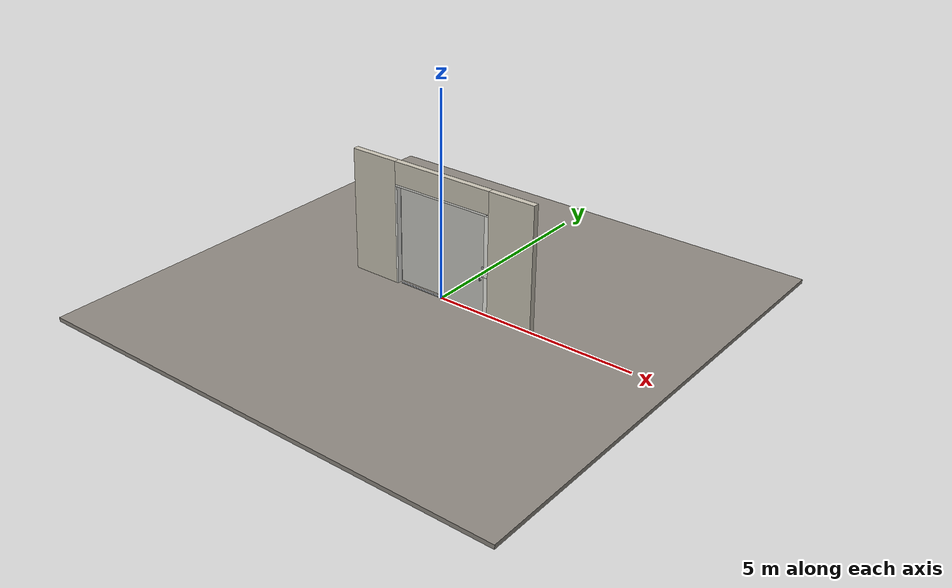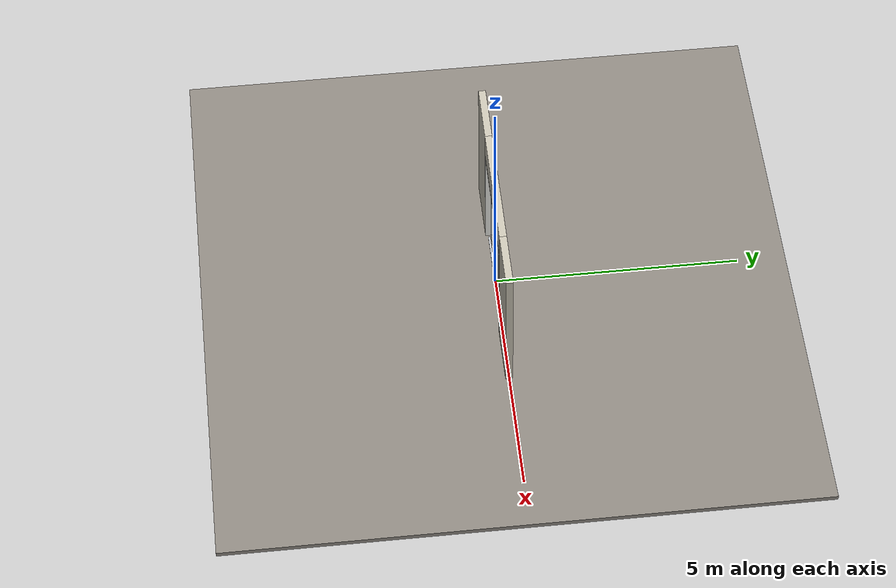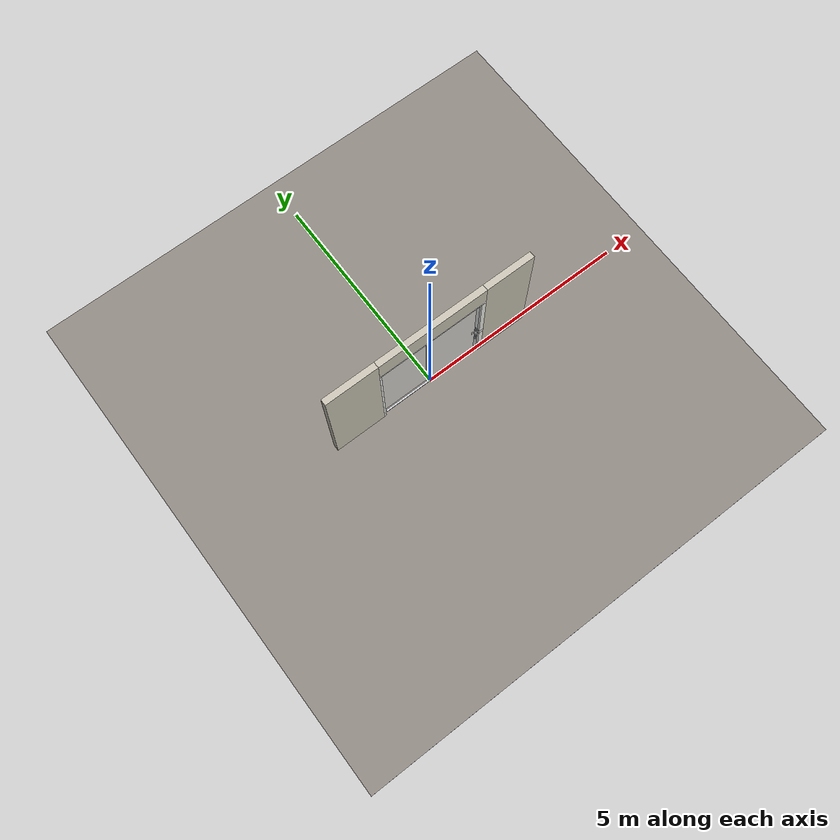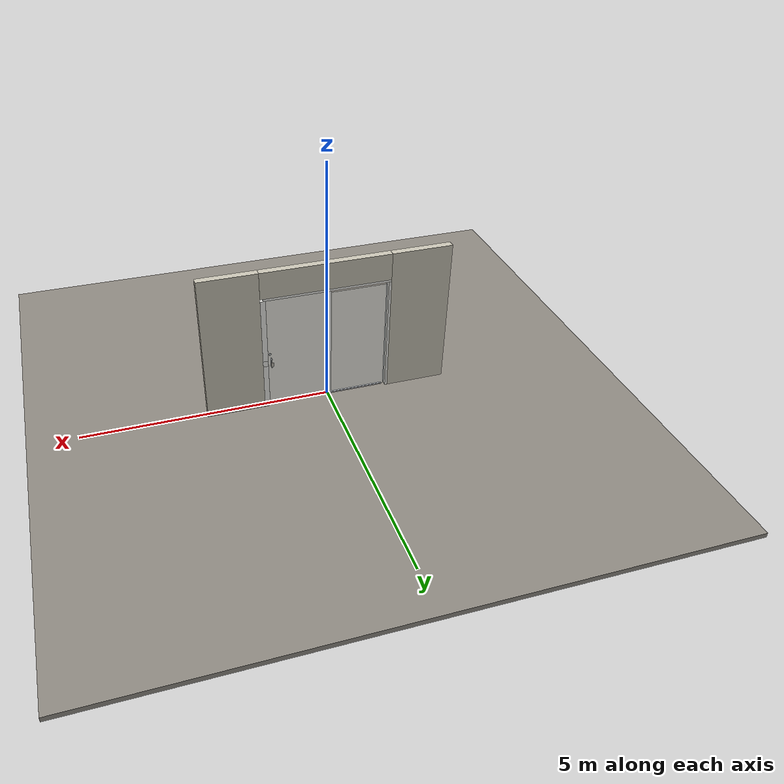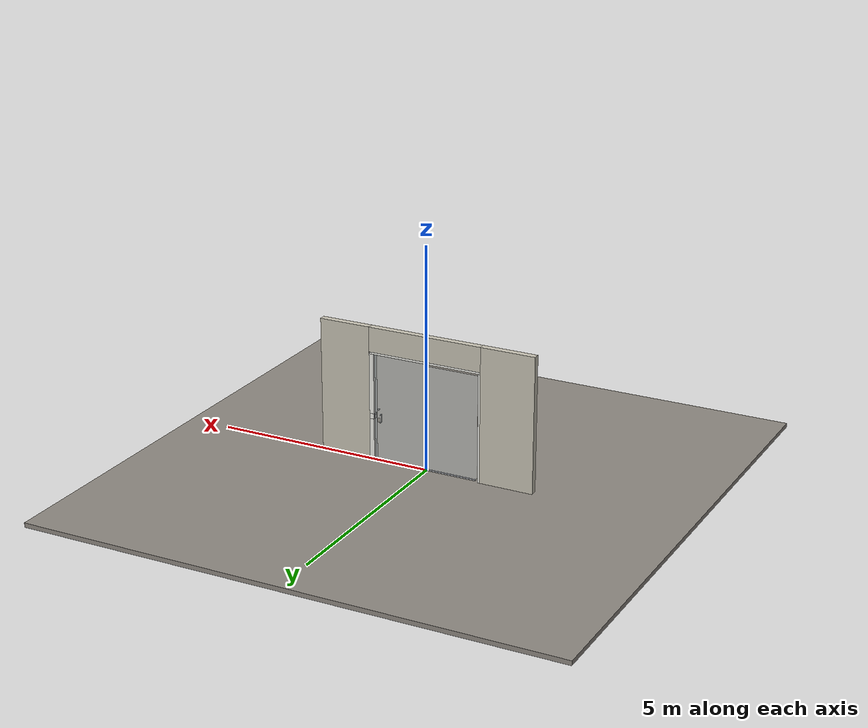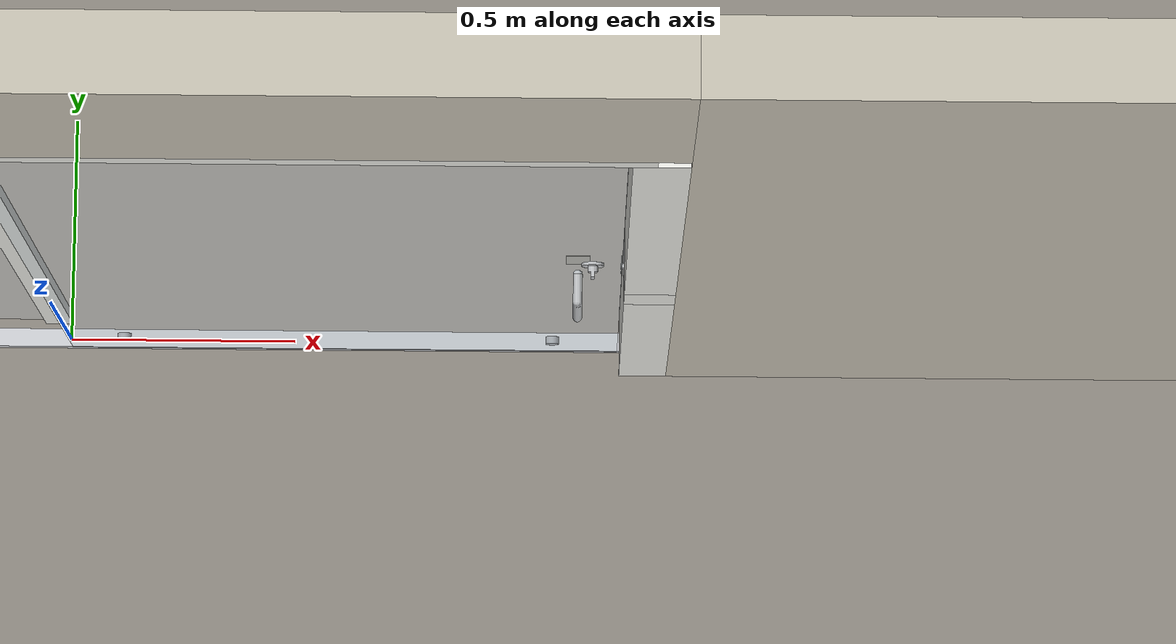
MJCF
<?xml version="1.0" ?>
<mujoco model="db0023_sliding_single_simple">
  <compiler angle="radian" meshdir="../../hardware" texturedir="../../textures" autolimits="true" inertiafromgeom="false"/>
  <option timestep="0.002" integrator="implicitfast" cone="elliptic" impratio="10" noslip_iterations="3">
    <flag multiccd="enable"/>
  </option>
  <size memory="16M"/>
  <default>
    <geom condim="4" solref="0.005 1" solimp="0.95 0.99 0.001"/>
    <joint solreflimit="0.005 1" solimplimit="0.95 0.99 0.001"/>
    <tendon solreflimit="0.005 1"/>
    <equality solref="0.002 1"/>
  </default>
  <visual>
    <headlight ambient="0.4 0.4 0.4" diffuse="0.7 0.7 0.7" specular="0.2 0.2 0.2"/>
    <quality shadowsize="4096"/>
    <map znear="0.01" zfar="60"/>
  </visual>
  <asset>
    <mesh name="pull_1e5d69a91a" file="pull_1e5d69a91a.obj"/>
    <mesh name="thumbturn_eb5c9899a3" file="thumbturn_eb5c9899a3.obj"/>
    <material name="mat_floor" rgba="0.55 0.53 0.5 1" specular="0.2" shininess="0.15" reflectance="0"/>
    <material name="mat_wall" rgba="0.78 0.76 0.7 1" specular="0.2" shininess="0.1" reflectance="0"/>
    <material name="mat_frame" rgba="0.92 0.92 0.9 1" specular="0.2" shininess="0.6" reflectance="0"/>
    <material name="mat_track" rgba="0.8 0.81 0.83 1" specular="0.8" shininess="0.6" reflectance="0.4"/>
    <material name="mat_fixed_glass" rgba="0.85 0.92 0.95 0.25" specular="0.2" shininess="0.95" reflectance="0.1"/>
    <material name="mat_leaf" rgba="0.85 0.92 0.95 0.25" specular="0.2" shininess="0.95" reflectance="0.1"/>
    <material name="mat_glass_leaf" rgba="0.85 0.92 0.95 0.25" specular="0.2" shininess="0.95" reflectance="0.1"/>
    <material name="mat_patch" rgba="0.75 0.76 0.77 1" specular="0.8" shininess="0.65" reflectance="0.4"/>
    <material name="mat_roller" rgba="0.65 0.66 0.68 1" specular="0.74" shininess="0.5" reflectance="0.36"/>
    <material name="mat_op_stainless" rgba="0.75 0.76 0.77 1" specular="0.8" shininess="0.65" reflectance="0.4"/>
    <material name="mat_op_nickel_satin" rgba="0.72 0.7 0.66 1" specular="0.8" shininess="0.65" reflectance="0.4"/>
    <material name="mat_hook" rgba="0.75 0.76 0.77 1" specular="0.8" shininess="0.65" reflectance="0.4"/>
    <texture name="skybox" type="skybox" builtin="gradient" rgb1="0.6 0.7 0.85" rgb2="0.9 0.92 0.95" width="256" height="256"/>
  </asset>
  <worldbody>
    <light name="sun" pos="1.5 -2.5 4" dir="-0.3 0.5 -0.8" directional="true" diffuse="0.8 0.8 0.8" specular="0.3 0.3 0.3" castshadow="true"/>
    <light name="fill" pos="-1.5 2.5 3" dir="0.3 -0.5 -0.7" directional="true" diffuse="0.35 0.35 0.4" castshadow="false"/>
    <camera name="robot_view" pos="0 -2.929375 2.042725" xyaxes="1 0 0 0 0.26963 0.962964" fovy="52"/>
    <camera name="far_view" pos="0 2.929375 2.042725" xyaxes="-1 0 0 0 -0.26963 0.962964" fovy="52"/>
    <camera name="iso" pos="2.226325 -2.460675 2.511425" xyaxes="0.741536 0.670913 0 -0.242917 0.268487 0.932151" fovy="46"/>
    <camera name="detail_handle" pos="1.314 -0.8825 1.23" xyaxes="0.97561 0.219512 0 -0.070934 0.315262 0.94635" fovy="38"/>
    <geom name="floor" type="box" size="6 6 0.05" pos="0 0 -0.05" material="mat_floor" group="0" contype="1" conaffinity="1" friction="0.8 0.005 0.0001" density="2400"/>
    <geom name="wall_left" type="box" size="0.613 0.0725 1.5225" pos="-1.887 0 1.5225" material="mat_wall" group="0" contype="1" conaffinity="1" friction="0.6 0.005 0.0001" density="800"/>
    <geom name="wall_right" type="box" size="0.583 0.0725 1.5225" pos="1.917 0 1.5225" material="mat_wall" group="0" contype="1" conaffinity="1" friction="0.6 0.005 0.0001" density="800"/>
    <geom name="wall_header" type="box" size="1.304 0.0725 0.2775" pos="0.03 0 2.7675" material="mat_wall" group="0" contype="1" conaffinity="1" friction="0.6 0.005 0.0001" density="800"/>
    <geom name="jamb_l" type="box" size="0.0225 0.0725 1.2225" pos="-1.2515 0 1.2225" material="mat_frame" group="0" contype="1" conaffinity="1" friction="0.6 0.005 0.0001" density="300"/>
    <geom name="jamb_head" type="box" size="1.274 0.0725 0.0225" pos="0 0 2.4675" material="mat_frame" group="0" contype="1" conaffinity="1" friction="0.6 0.005 0.0001" density="300"/>
    <geom name="fixed_panel_glass" type="box" size="0.5945 0.003 1.1725" pos="-0.6145 0.04 1.2225" material="mat_fixed_glass" group="0" contype="1" conaffinity="1" friction="0.6 0.005 0.0001" density="2500"/>
    <geom name="fixed_panel_stile" type="box" size="0.03 0.012 1.2225" pos="-0.03 0.0475 1.2225" material="mat_frame" group="0" contype="1" conaffinity="1" friction="0.6 0.005 0.0001" density="1400"/>
    <geom name="bottom_rail" type="box" size="1.22 0.02 0.012" pos="0.054 0 0.012" material="mat_track" group="0" contype="1" conaffinity="1" friction="0.6 0.005 0.0001" density="2700"/>
    <geom name="leaf_hook_keeper" type="box" size="0.008 0.015 0.006" pos="1.242 0 1.03" material="mat_hook" group="0" contype="1" conaffinity="1" friction="0.6 0.005 0.0001" density="7900"/>
    <geom name="jamb_latch_pwall_1030_n" type="box" size="0.0525 0.022 0.06" pos="1.2815 -0.0505 1.03" material="mat_frame" group="0" contype="1" conaffinity="1" friction="0.6 0.005 0.0001" density="300"/>
    <geom name="jamb_latch_pwall_1030_p" type="box" size="0.0525 0.022 0.06" pos="1.2815 0.0505 1.03" material="mat_frame" group="0" contype="1" conaffinity="1" friction="0.6 0.005 0.0001" density="300"/>
    <geom name="jamb_latch_pback_1030" type="box" size="0.004 0.0285 0.06" pos="1.33 0 1.03" material="mat_frame" group="0" contype="1" conaffinity="1" friction="0.6 0.005 0.0001" density="300"/>
    <geom name="jamb_latch_0" type="box" size="0.0525 0.0725 0.485" pos="1.2815 0 0.485" material="mat_frame" group="0" contype="1" conaffinity="1" friction="0.6 0.005 0.0001" density="300"/>
    <geom name="jamb_latch_1" type="box" size="0.0525 0.0725 0.6775" pos="1.2815 0 1.7675" material="mat_frame" group="0" contype="1" conaffinity="1" friction="0.6 0.005 0.0001" density="300"/>
    <geom name="leaf_hook_keeper_plate_b" type="box" size="0.0345 0.003 0.0005" pos="1.2285 0 0.967" quat="-0.5 -0.5 0.5 0.5" material="mat_hook" group="1" contype="0" conaffinity="0" density="7800"/>
    <geom name="leaf_hook_keeper_plate_l" type="box" size="0.003 0.06 0.0005" pos="1.2285 0.0315 1.03" quat="-0.5 -0.5 0.5 0.5" material="mat_hook" group="1" contype="0" conaffinity="0" density="7800"/>
    <geom name="leaf_hook_keeper_plate_t" type="box" size="0.0345 0.003 0.0005" pos="1.2285 0 1.093" quat="-0.5 -0.5 0.5 0.5" material="mat_hook" group="1" contype="0" conaffinity="0" density="7800"/>
    <geom name="leaf_hook_keeper_plate_r" type="box" size="0.003 0.06 0.0005" pos="1.2285 -0.0315 1.03" quat="-0.5 -0.5 0.5 0.5" material="mat_hook" group="1" contype="0" conaffinity="0" density="7800"/>
    <geom name="leaf_hook_keeper_bracket" type="box" size="0.0064 0.00725 0.005" pos="1.242 0.02175 1.03" material="mat_hook" group="1" contype="0" conaffinity="0" density="7850"/>
    <site name="approach_point" pos="0 -1.5 0" quat="1 0 0 0" size="0.05" rgba="0.2 0.9 0.2 0.5" group="4"/>
    <site name="goal_point" pos="0 1.5 0" quat="1 0 0 0" size="0.05" rgba="0.2 0.9 0.2 0.5" group="4"/>
    <site name="door_plane_center" pos="0 0 1.2225" quat="1 0 0 0" size="0.02" rgba="0.2 0.9 0.2 0.5" group="4"/>
    <body name="leaf" pos="0.6145 0 0">
      <inertial pos="0.002146 -0.000286 1.226999" mass="205.083553" quat="-0.499264 0.49994 0.500142 0.500653" diaginertia="25.594997043 98.436448036 123.95349636"/>
      <joint name="leaf_slide" type="slide" axis="-1 0 0" limited="true" range="0 1.121" damping="12.266727" frictionloss="157.064235" armature="0.5"/>
      <geom name="leaf_glass" type="box" size="0.6095 0.0225 1.2" pos="0 0 1.23" material="mat_glass_leaf" group="0" contype="1" conaffinity="1" friction="0.4 0.005 0.0001" density="1"/>
      <geom name="leaf_roller_0" type="cylinder" size="0.015 0.008" pos="-0.4945 0 0.039" quat="0.707107 -0.707107 0 0" material="mat_roller" group="1" contype="0" conaffinity="0" density="7850"/>
      <geom name="leaf_roller_1" type="cylinder" size="0.015 0.008" pos="0.4645 0 0.039" quat="0.707107 -0.707107 0 0" material="mat_roller" group="1" contype="0" conaffinity="0" density="7850"/>
      <geom name="leaf_pull_n" type="mesh" mesh="pull_1e5d69a91a" pos="0.5195 -0.0225 0.95" quat="0.707107 0.707107 0 0" material="mat_op_stainless" group="1" contype="0" conaffinity="0" density="3000"/>
      <geom name="leaf_pull_col_n" type="capsule" size="0.0095 0.08" pos="0.5195 -0.0825 0.95" material="mat_op_stainless" group="3" contype="1" conaffinity="1" rgba="0.8 0.3 0.3 0.25" friction="0.7 0.01 0.0001" density="3000"/>
      <geom name="leaf_ext_pull_p" type="box" size="0.025 0.0005 0.05" pos="0.5195 0.023 0.95" material="mat_op_nickel_satin" group="1" contype="0" conaffinity="0" density="1000"/>
      <geom name="leaf_hook_faceplate" type="box" size="0.0006 0.011 0.045" pos="0.6089 0 1.03" material="mat_hook" group="1" contype="0" conaffinity="0" density="7900"/>
      <site name="leaf_pull_grip_n" pos="0.5195 -0.0825 0.95" quat="1 0 0 0" size="0.012" rgba="0.2 0.9 0.2 0.5" group="4"/>
      <site name="leaf_ext_pull_grip_p" pos="0.5195 0.0225 0.95" quat="1 0 0 0" size="0.012" rgba="0.2 0.9 0.2 0.5" group="4"/>
      <site name="leaf_edge_mid" pos="0.6095 0 1.23" quat="1 0 0 0" size="0.02" rgba="0.2 0.9 0.2 0.5" group="4"/>
      <body name="leaf_hook_thumbturn" pos="0.5495 -0.0225 1.17">
        <inertial pos="0 -0.012928 0" mass="0.178946" quat="0.5 0.5 0.5 0.5" diaginertia="0.000026045 0.000026215 0.000032438"/>
        <joint name="leaf_hook_thumbturn_hinge" type="hinge" axis="0 1 0" limited="true" range="0 1" damping="0.05" frictionloss="0.25" armature="0.005"/>
        <geom name="leaf_hook_tt_mesh" type="mesh" mesh="thumbturn_eb5c9899a3" pos="0 0 0" quat="0.707107 0.707107 0 0" material="mat_hook" group="0" contype="1" conaffinity="1" friction="0.6 0.005 0.0001" density="7100"/>
        <geom name="leaf_hook_tt_col" type="box" size="0.006 0.012 0.016" pos="0 -0.02 0" material="mat_hook" group="3" contype="1" conaffinity="1" rgba="0.8 0.3 0.3 0.25" friction="0.6 0.005 0.0001" density="7100"/>
        <site name="leaf_hook_tt_grip" pos="0 -0.03 0" quat="1 0 0 0" size="0.01" rgba="0.2 0.9 0.2 0.5" group="4"/>
      </body>
      <body name="leaf_hook" pos="0.6095 0 1.03">
        <inertial pos="0.026737 0 -0.009263" mass="0.072048" quat="0.200817 -0.200817 0.677991 0.677991" diaginertia="0.000005266 0.00001511 0.000019175"/>
        <joint name="leaf_hook_hinge" type="hinge" axis="0 1 0" limited="true" range="0 1" damping="0.05" frictionloss="0.1" armature="0.005"/>
        <geom name="leaf_hook_arm" type="box" size="0.022 0.005 0.006" pos="0.02 0 -0.016" material="mat_hook" group="0" contype="1" conaffinity="1" friction="0.6 0.005 0.0001" density="7900"/>
        <geom name="leaf_hook_tip" type="box" size="0.006 0.005 0.016" pos="0.036 0 0" material="mat_hook" group="0" contype="1" conaffinity="1" friction="0.6 0.005 0.0001" density="7900"/>
      </body>
    </body>
  </worldbody>
  <equality>
    <joint name="leaf_hook_couple" joint1="leaf_hook_hinge" joint2="leaf_hook_thumbturn_hinge" polycoef="0 1 0 0 0" active="true"/>
  </equality>
  <sensor>
    <jointpos name="leaf_slide_pos" joint="leaf_slide"/>
    <jointvel name="leaf_slide_vel" joint="leaf_slide"/>
    <jointpos name="leaf_hook_thumbturn_hinge_pos" joint="leaf_hook_thumbturn_hinge"/>
    <jointvel name="leaf_hook_thumbturn_hinge_vel" joint="leaf_hook_thumbturn_hinge"/>
    <jointpos name="leaf_hook_hinge_pos" joint="leaf_hook_hinge"/>
    <jointvel name="leaf_hook_hinge_vel" joint="leaf_hook_hinge"/>
  </sensor>
</mujoco>
